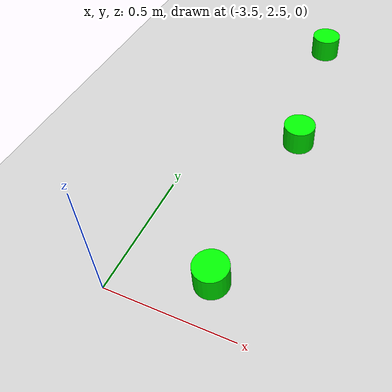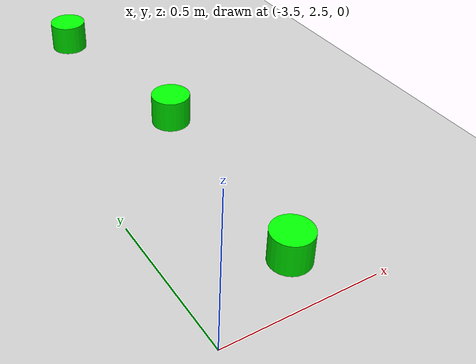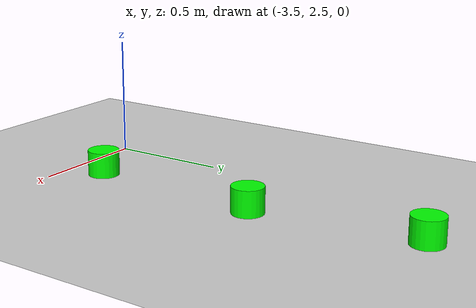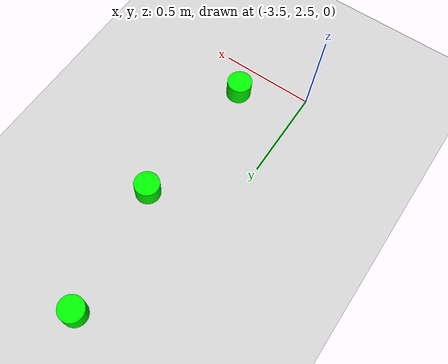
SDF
<sdf version="1.7">
 <world name="default">
  <model name="ground_plane">
   <static>1</static>
   <link name="link">
    <collision name="collision">
     <geometry><plane><normal>0 0 1</normal><size>100 100</size></plane></geometry>
     <surface>
      <contact><collide_bitmask>65535</collide_bitmask></contact>
      <friction><ode><mu>100</mu><mu2>50</mu2></ode></friction>
     </surface>
    </collision>
    <visual name="visual">
     <cast_shadows>0</cast_shadows>
     <geometry><plane><normal>0 0 1</normal><size>100 100</size></plane></geometry>
     <material>
      <script><uri>file://media/materials/scripts/gazebo.material</uri><name>Gazebo/Grey</name></script>
     </material>
    </visual>
   </link>
  </model>
  <model name="latinha_verde_clone_8_clone_2_clone_2_clone_22">
   <link name="link">
    <inertial>
     <mass>1</mass>
     <inertia><ixx>0.145833</ixx><ixy>0</ixy><ixz>0</ixz><iyy>0.145833</iyy><iyz>0</iyz><izz>0.125</izz></inertia>
    </inertial>
    <visual name="visual">
     <geometry><cylinder><radius>0.066</radius><length>0.114</length></cylinder></geometry>
     <material>
      <script><name>Gazebo/Gray</name><uri>file://media/materials/scripts/gazebo.material</uri></script>
      <shader type="pixel"><normal_map>__default__</normal_map></shader>
      <ambient>0 1 0 1</ambient>
      <diffuse>0 1 0 1</diffuse>
      <specular>0.1 0.1 0.1 1</specular>
      <emissive>0 0 0 1</emissive>
     </material>
    </visual>
    <collision name="collision">
     <geometry><cylinder><radius>0.05</radius><length>0.1</length></cylinder></geometry>
     <surface>
      <friction>
       <ode><mu>1</mu><mu2>1</mu2><fdir1>0 0 0</fdir1><slip1>0</slip1><slip2>0</slip2></ode>
       <torsional>
        <coefficient>1</coefficient>
        <patch_radius>0</patch_radius>
        <surface_radius>0</surface_radius>
        <use_patch_radius>1</use_patch_radius>
        <ode><slip>0</slip></ode>
       </torsional>
      </friction>
      <bounce><restitution_coefficient>0</restitution_coefficient><threshold>1e+06</threshold></bounce>
      <contact>
       <collide_without_contact>0</collide_without_contact>
       <collide_without_contact_bitmask>1</collide_without_contact_bitmask>
       <collide_bitmask>1</collide_bitmask>
       <ode>
        <soft_cfm>0</soft_cfm>
        <soft_erp>0.2</soft_erp>
        <kp>1e+13</kp>
        <kd>1</kd>
        <max_vel>0.01</max_vel>
        <min_depth>0</min_depth>
       </ode>
       <bullet>
        <split_impulse>1</split_impulse>
        <split_impulse_penetration_threshold>-0.01</split_impulse_penetration_threshold>
        <soft_cfm>0</soft_cfm>
        <soft_erp>0.2</soft_erp>
        <kp>1e+13</kp>
        <kd>1</kd>
       </bullet>
      </contact>
     </surface>
    </collision>
   </link>
   <static>0</static>
   <pose>-3.20827 4.10338 0.05 0 -0 0.000118</pose>
  </model>
  <model name="latinha_verde_clone_8_clone_2_clone_2_clone_23">
   <link name="link">
    <inertial>
     <mass>1</mass>
     <inertia><ixx>0.145833</ixx><ixy>0</ixy><ixz>0</ixz><iyy>0.145833</iyy><iyz>0</iyz><izz>0.125</izz></inertia>
    </inertial>
    <visual name="visual">
     <geometry><cylinder><radius>0.066</radius><length>0.114</length></cylinder></geometry>
     <material>
      <script><name>Gazebo/Gray</name><uri>file://media/materials/scripts/gazebo.material</uri></script>
      <shader type="pixel"><normal_map>__default__</normal_map></shader>
      <ambient>0 1 0 1</ambient>
      <diffuse>0 1 0 1</diffuse>
      <specular>0.1 0.1 0.1 1</specular>
      <emissive>0 0 0 1</emissive>
     </material>
    </visual>
    <collision name="collision">
     <geometry><cylinder><radius>0.05</radius><length>0.1</length></cylinder></geometry>
     <surface>
      <friction>
       <ode><mu>1</mu><mu2>1</mu2><fdir1>0 0 0</fdir1><slip1>0</slip1><slip2>0</slip2></ode>
       <torsional>
        <coefficient>1</coefficient>
        <patch_radius>0</patch_radius>
        <surface_radius>0</surface_radius>
        <use_patch_radius>1</use_patch_radius>
        <ode><slip>0</slip></ode>
       </torsional>
      </friction>
      <bounce><restitution_coefficient>0</restitution_coefficient><threshold>1e+06</threshold></bounce>
      <contact>
       <collide_without_contact>0</collide_without_contact>
       <collide_without_contact_bitmask>1</collide_without_contact_bitmask>
       <collide_bitmask>1</collide_bitmask>
       <ode>
        <soft_cfm>0</soft_cfm>
        <soft_erp>0.2</soft_erp>
        <kp>1e+13</kp>
        <kd>1</kd>
        <max_vel>0.01</max_vel>
        <min_depth>0</min_depth>
       </ode>
       <bullet>
        <split_impulse>1</split_impulse>
        <split_impulse_penetration_threshold>-0.01</split_impulse_penetration_threshold>
        <soft_cfm>0</soft_cfm>
        <soft_erp>0.2</soft_erp>
        <kp>1e+13</kp>
        <kd>1</kd>
       </bullet>
      </contact>
     </surface>
    </collision>
   </link>
   <static>0</static>
   <pose>-3.11754 3.42271 0.05 0 -0 0.000118</pose>
  </model>
  <model name="latinha_verde_clone_8_clone_2_clone_2_clone_24">
   <link name="link">
    <inertial>
     <mass>1</mass>
     <inertia><ixx>0.145833</ixx><ixy>0</ixy><ixz>0</ixz><iyy>0.145833</iyy><iyz>0</iyz><izz>0.125</izz></inertia>
    </inertial>
    <visual name="visual">
     <geometry><cylinder><radius>0.066</radius><length>0.114</length></cylinder></geometry>
     <material>
      <script><name>Gazebo/Gray</name><uri>file://media/materials/scripts/gazebo.material</uri></script>
      <shader type="pixel"><normal_map>__default__</normal_map></shader>
      <ambient>0 1 0 1</ambient>
      <diffuse>0 1 0 1</diffuse>
      <specular>0.1 0.1 0.1 1</specular>
      <emissive>0 0 0 1</emissive>
     </material>
    </visual>
    <collision name="collision">
     <geometry><cylinder><radius>0.05</radius><length>0.1</length></cylinder></geometry>
     <surface>
      <friction>
       <ode><mu>1</mu><mu2>1</mu2><fdir1>0 0 0</fdir1><slip1>0</slip1><slip2>0</slip2></ode>
       <torsional>
        <coefficient>1</coefficient>
        <patch_radius>0</patch_radius>
        <surface_radius>0</surface_radius>
        <use_patch_radius>1</use_patch_radius>
        <ode><slip>0</slip></ode>
       </torsional>
      </friction>
      <bounce><restitution_coefficient>0</restitution_coefficient><threshold>1e+06</threshold></bounce>
      <contact>
       <collide_without_contact>0</collide_without_contact>
       <collide_without_contact_bitmask>1</collide_without_contact_bitmask>
       <collide_bitmask>1</collide_bitmask>
       <ode>
        <soft_cfm>0</soft_cfm>
        <soft_erp>0.2</soft_erp>
        <kp>1e+13</kp>
        <kd>1</kd>
        <max_vel>0.01</max_vel>
        <min_depth>0</min_depth>
       </ode>
       <bullet>
        <split_impulse>1</split_impulse>
        <split_impulse_penetration_threshold>-0.01</split_impulse_penetration_threshold>
        <soft_cfm>0</soft_cfm>
        <soft_erp>0.2</soft_erp>
        <kp>1e+13</kp>
        <kd>1</kd>
       </bullet>
      </contact>
     </surface>
    </collision>
   </link>
   <static>0</static>
   <pose>-3.16642 2.66364 0.05 0 -0 0.000118</pose>
  </model>
 </world>
</sdf>
